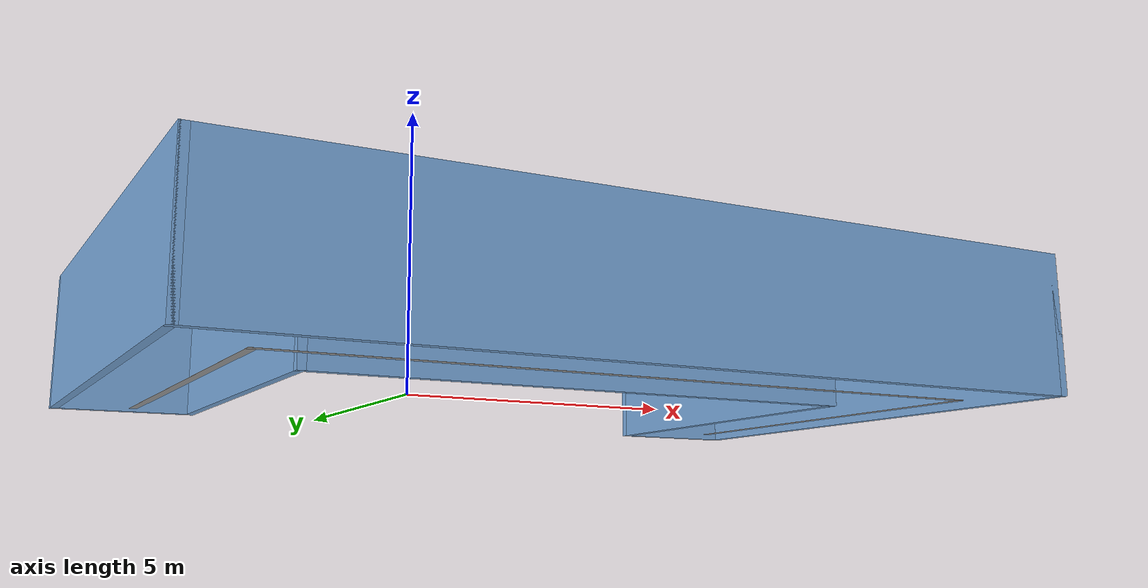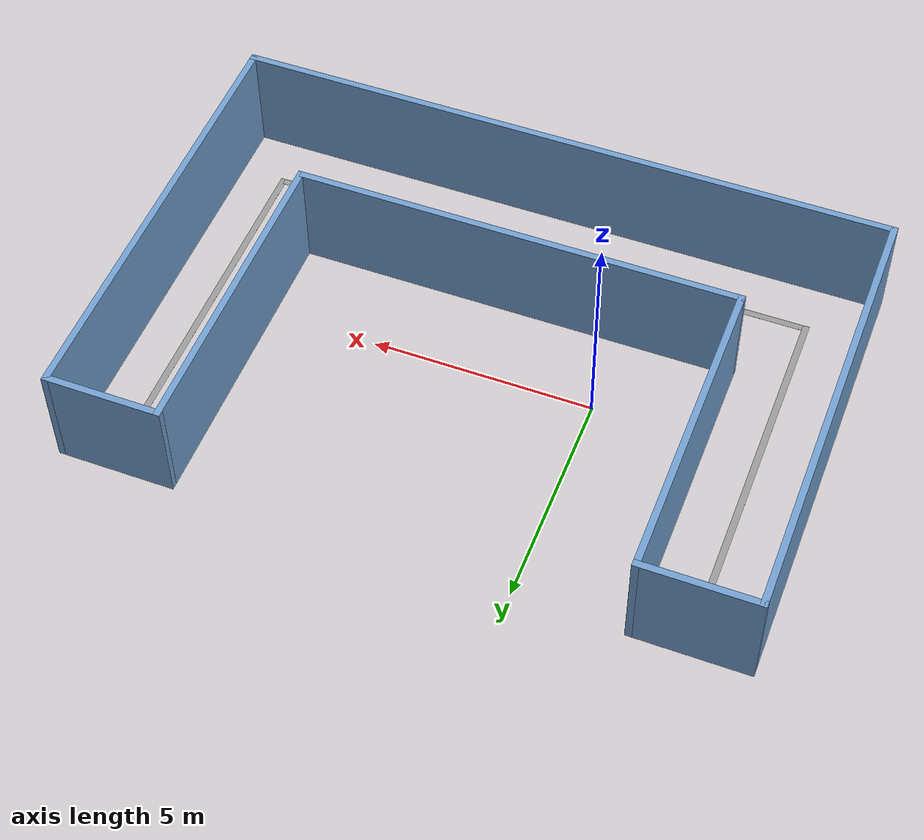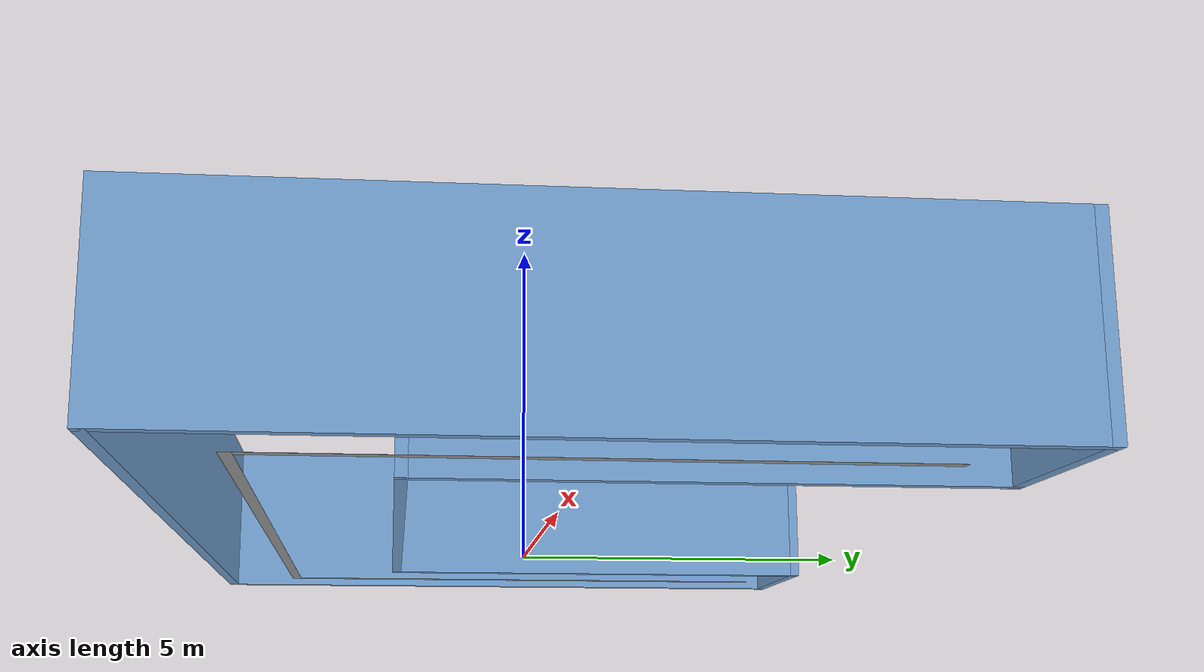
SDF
<?xml version='1.0'?>
<sdf version='1.7'>
  <model name='mybuilding'>
    <pose>2.5 0 0 0 -0 0</pose>
    <link name='Wall_0'>
      <collision name='Wall_0_Collision'>
        <geometry>
          <box>
            <size>10.15 0.15 2.5</size>
          </box>
        </geometry>
        <pose>0 0 1.25 0 -0 0</pose>
      </collision>
      <visual name='Wall_0_Visual'>
        <pose>0 0 1.25 0 -0 0</pose>
        <geometry>
          <box>
            <size>10.15 0.15 2.5</size>
          </box>
        </geometry>
        <material>
          <script>
            <uri>file://media/materials/scripts/gazebo.material</uri>
            <name>Gazebo/Grey</name>
          </script>
          <ambient>0.447059 0.623529 0.811765 1</ambient>
        </material>
        <meta>
          <layer>0</layer>
        </meta>
      </visual>
      <pose>-7.5 -0 0 0 -0 -1.5708</pose>
    </link>
    <link name='Wall_1'>
      <collision name='Wall_1_Collision'>
        <geometry>
          <box>
            <size>15.15 0.15 2.5</size>
          </box>
        </geometry>
        <pose>0 0 1.25 0 -0 0</pose>
      </collision>
      <visual name='Wall_1_Visual'>
        <pose>0 0 1.25 0 -0 0</pose>
        <geometry>
          <box>
            <size>15.15 0.15 2.5</size>
          </box>
        </geometry>
        <material>
          <script>
            <uri>file://media/materials/scripts/gazebo.material</uri>
            <name>Gazebo/Grey</name>
          </script>
          <ambient>0.447059 0.623529 0.811765 1</ambient>
        </material>
        <meta>
          <layer>0</layer>
        </meta>
      </visual>
      <pose>0 -5 0 0 -0 0</pose>
    </link>
    <link name='Wall_10'>
      <collision name='Wall_10_Collision'>
        <geometry>
          <box>
            <size>12.75 0.15 0.001</size>
          </box>
        </geometry>
        <pose>0 0 0.0005 0 -0 0</pose>
      </collision>
      <visual name='Wall_10_Visual'>
        <pose>0 0 0.0005 0 -0 0</pose>
        <geometry>
          <box>
            <size>12.75 0.15 0.001</size>
          </box>
        </geometry>
        <material>
          <script>
            <uri>file://media/materials/scripts/gazebo.material</uri>
            <name>Gazebo/Grey</name>
          </script>
          <ambient>1 1 1 1</ambient>
        </material>
        <meta>
          <layer>0</layer>
        </meta>
      </visual>
      <pose>0.111 -3.77 0 0 -0 0</pose>
    </link>
    <link name='Wall_11'>
      <collision name='Wall_11_Collision'>
        <geometry>
          <box>
            <size>7.75 0.15 0.001</size>
          </box>
        </geometry>
        <pose>0 0 0.0005 0 -0 0</pose>
      </collision>
      <visual name='Wall_11_Visual'>
        <pose>0 0 0.0005 0 -0 0</pose>
        <geometry>
          <box>
            <size>7.75 0.15 0.001</size>
          </box>
        </geometry>
        <material>
          <script>
            <uri>file://media/materials/scripts/gazebo.material</uri>
            <name>Gazebo/Grey</name>
          </script>
          <ambient>1 1 1 1</ambient>
        </material>
        <meta>
          <layer>0</layer>
        </meta>
      </visual>
      <pose>6.411 0.03 0 0 -0 1.5708</pose>
    </link>
    <link name='Wall_2'>
      <collision name='Wall_2_Collision'>
        <geometry>
          <box>
            <size>10.15 0.15 2.5</size>
          </box>
        </geometry>
        <pose>0 0 1.25 0 -0 0</pose>
      </collision>
      <visual name='Wall_2_Visual'>
        <pose>0 0 1.25 0 -0 0</pose>
        <geometry>
          <box>
            <size>10.15 0.15 2.5</size>
          </box>
        </geometry>
        <material>
          <script>
            <uri>file://media/materials/scripts/gazebo.material</uri>
            <name>Gazebo/Grey</name>
          </script>
          <ambient>0.447059 0.623529 0.811765 1</ambient>
        </material>
        <meta>
          <layer>0</layer>
        </meta>
      </visual>
      <pose>7.5 -0 0 0 -0 1.5708</pose>
    </link>
    <link name='Wall_3'>
      <collision name='Wall_3_Collision'>
        <geometry>
          <box>
            <size>2.65 0.15 2.5</size>
          </box>
        </geometry>
        <pose>0 0 1.25 0 -0 0</pose>
      </collision>
      <visual name='Wall_3_Visual'>
        <pose>0 0 1.25 0 -0 0</pose>
        <geometry>
          <box>
            <size>2.65 0.15 2.5</size>
          </box>
        </geometry>
        <material>
          <script>
            <uri>file://media/materials/scripts/gazebo.material</uri>
            <name>Gazebo/Grey</name>
          </script>
          <ambient>0.447059 0.623529 0.811765 1</ambient>
        </material>
        <meta>
          <layer>0</layer>
        </meta>
      </visual>
      <pose>6.25 5 0 0 -0 3.14159</pose>
    </link>
    <link name='Wall_4'>
      <collision name='Wall_4_Collision'>
        <geometry>
          <box>
            <size>7.15 0.15 2.5</size>
          </box>
        </geometry>
        <pose>0 0 1.25 0 -0 0</pose>
      </collision>
      <visual name='Wall_4_Visual'>
        <pose>0 0 1.25 0 -0 0</pose>
        <geometry>
          <box>
            <size>7.15 0.15 2.5</size>
          </box>
        </geometry>
        <material>
          <script>
            <uri>file://media/materials/scripts/gazebo.material</uri>
            <name>Gazebo/Grey</name>
          </script>
          <ambient>0.447059 0.623529 0.811765 1</ambient>
        </material>
        <meta>
          <layer>0</layer>
        </meta>
      </visual>
      <pose>5 1.5 0 0 -0 -1.5708</pose>
    </link>
    <link name='Wall_5'>
      <collision name='Wall_5_Collision'>
        <geometry>
          <box>
            <size>10.15 0.15 2.5</size>
          </box>
        </geometry>
        <pose>0 0 1.25 0 -0 0</pose>
      </collision>
      <visual name='Wall_5_Visual'>
        <pose>0 0 1.25 0 -0 0</pose>
        <geometry>
          <box>
            <size>10.15 0.15 2.5</size>
          </box>
        </geometry>
        <material>
          <script>
            <uri>file://media/materials/scripts/gazebo.material</uri>
            <name>Gazebo/Grey</name>
          </script>
          <ambient>0.447059 0.623529 0.811765 1</ambient>
        </material>
        <meta>
          <layer>0</layer>
        </meta>
      </visual>
      <pose>0 -2 0 0 -0 3.14159</pose>
    </link>
    <link name='Wall_6'>
      <collision name='Wall_6_Collision'>
        <geometry>
          <box>
            <size>7.15 0.15 2.5</size>
          </box>
        </geometry>
        <pose>0 0 1.25 0 -0 0</pose>
      </collision>
      <visual name='Wall_6_Visual'>
        <pose>0 0 1.25 0 -0 0</pose>
        <geometry>
          <box>
            <size>7.15 0.15 2.5</size>
          </box>
        </geometry>
        <material>
          <script>
            <uri>file://media/materials/scripts/gazebo.material</uri>
            <name>Gazebo/Grey</name>
          </script>
          <ambient>0.447059 0.623529 0.811765 1</ambient>
        </material>
        <meta>
          <layer>0</layer>
        </meta>
      </visual>
      <pose>-5 1.5 0 0 -0 1.5708</pose>
    </link>
    <link name='Wall_7'>
      <collision name='Wall_7_Collision'>
        <geometry>
          <box>
            <size>2.65 0.15 2.5</size>
          </box>
        </geometry>
        <pose>0 0 1.25 0 -0 0</pose>
      </collision>
      <visual name='Wall_7_Visual'>
        <pose>0 0 1.25 0 -0 0</pose>
        <geometry>
          <box>
            <size>2.65 0.15 2.5</size>
          </box>
        </geometry>
        <material>
          <script>
            <uri>file://media/materials/scripts/gazebo.material</uri>
            <name>Gazebo/Grey</name>
          </script>
          <ambient>0.447059 0.623529 0.811765 1</ambient>
        </material>
        <meta>
          <layer>0</layer>
        </meta>
      </visual>
      <pose>-6.25 5 0 0 -0 3.14159</pose>
    </link>
    <link name='Wall_9'>
      <collision name='Wall_9_Collision'>
        <geometry>
          <box>
            <size>8.25 0.15 0.001</size>
          </box>
        </geometry>
        <pose>0 0 0.001 0 -0 0</pose>
      </collision>
      <visual name='Wall_9_Visual'>
        <pose>0 0 0.001 0 -0 0</pose>
        <geometry>
          <box>
            <size>8.25 0.15 0.001</size>
          </box>
        </geometry>
        <material>
          <script>
            <uri>file://media/materials/scripts/gazebo.material</uri>
            <name>Gazebo/Grey</name>
          </script>
          <ambient>1 1 1 1</ambient>
        </material>
        <meta>
          <layer>0</layer>
        </meta>
      </visual>
      <pose>-6.189 0.28 0 0 -0 -1.5708</pose>
    </link>
    <static>1</static>
  </model>
</sdf>
